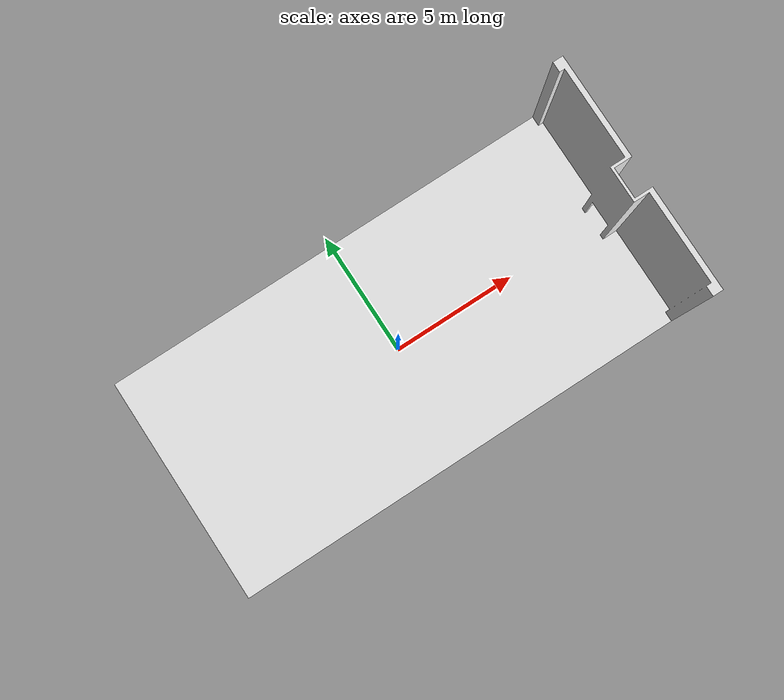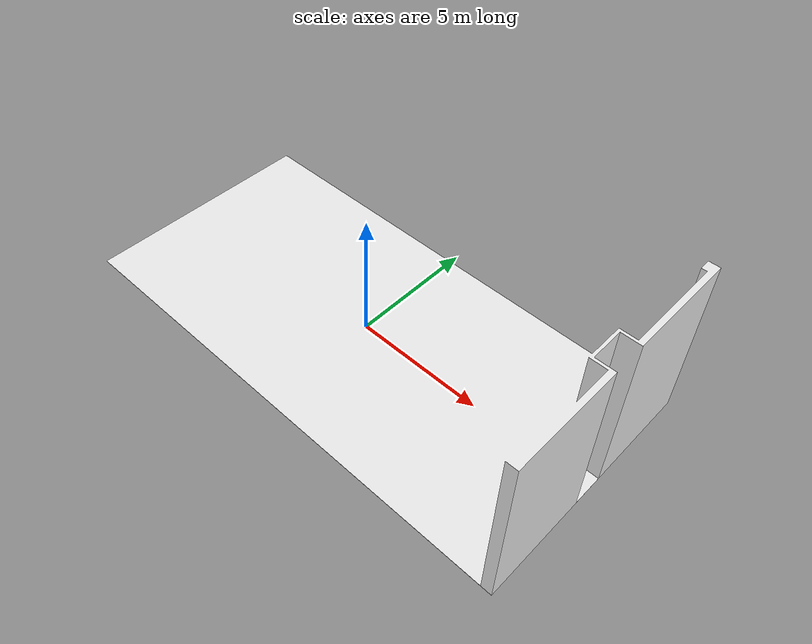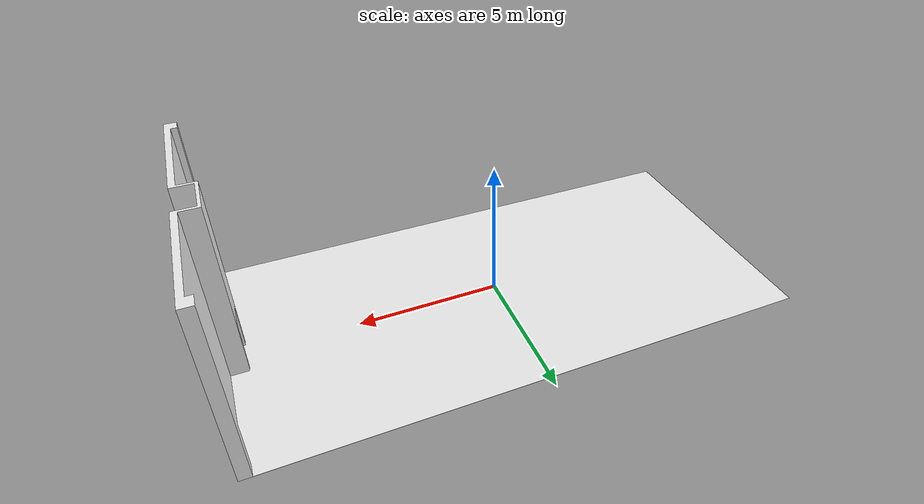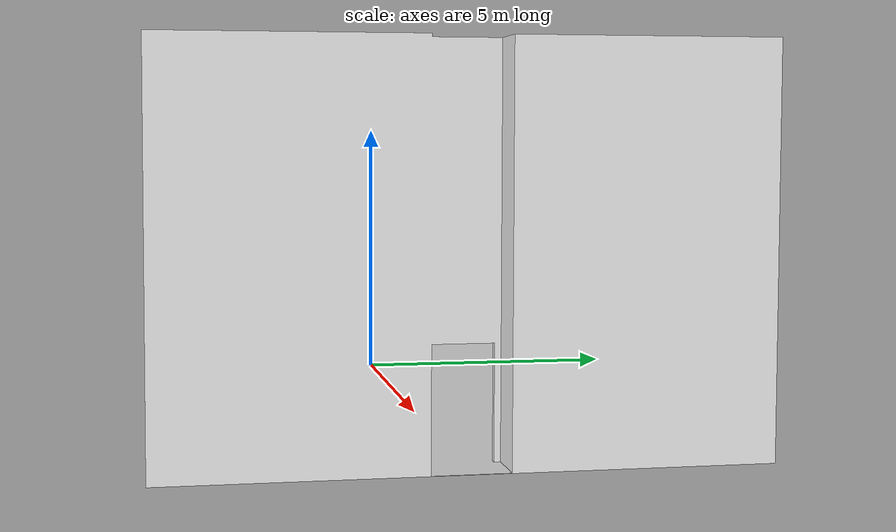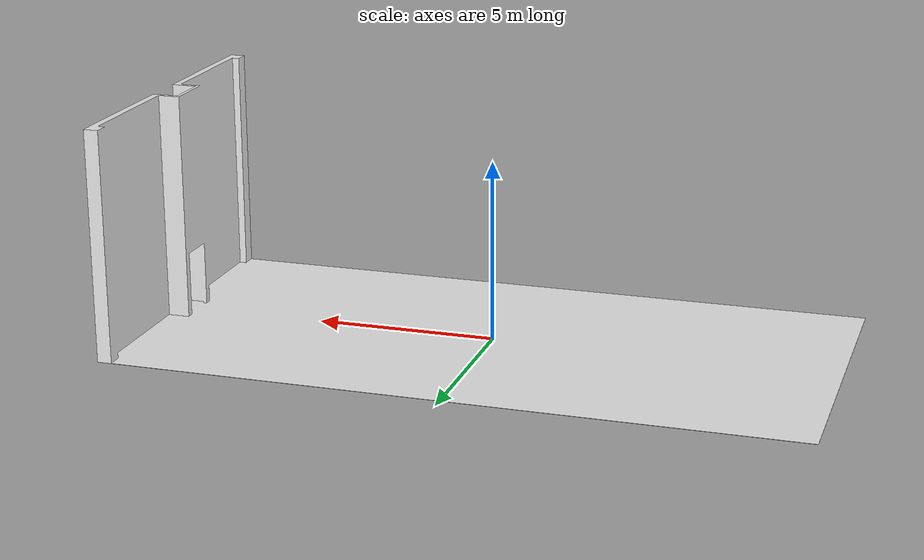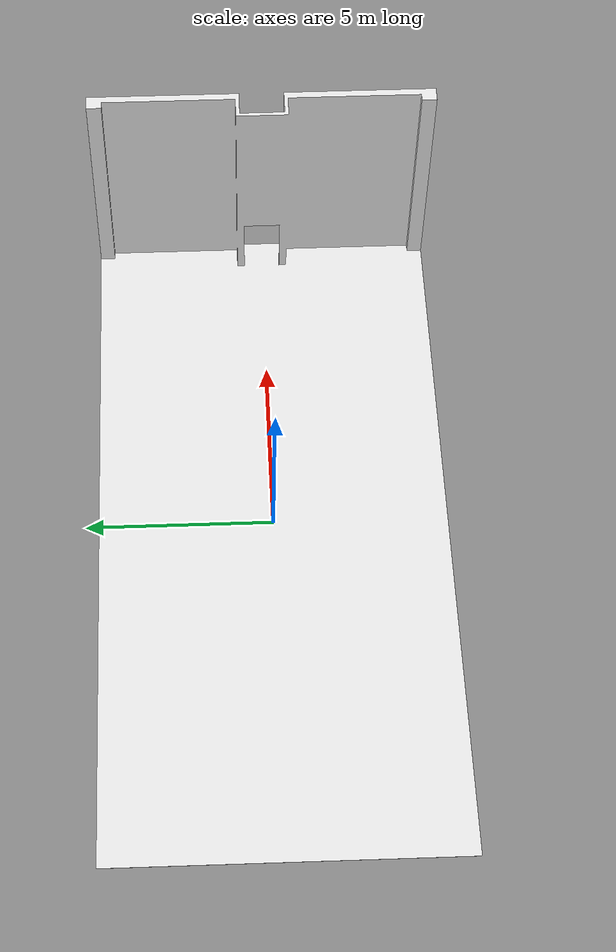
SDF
<?xml version="1.0" ?>
<sdf version="1.6">
  <model name="field">
    <static>true</static>
    <pose frame=''>0. 0. 0.002 1.57075 0. 0.</pose>
    <link name="link">
      <collision name="collision">
        <geometry>
          <mesh>
            <uri>model://floor/meshes/floor.stl</uri>
            <scale>.001 .001 .001</scale>
          </mesh>
        </geometry>
      </collision>
      <visual name="visual">
        <geometry>
          <mesh>
            <uri>model://floor/meshes/floor.stl</uri>
            <scale>.001 .001 .001</scale>
          </mesh>
        </geometry>
      <material>
          <script>
            <name>Gazebo/White</name>
            <uri>file://media/materials/scripts/gazebo.material</uri>
          </script>
        </material>
      </visual>
    </link>
  </model>
</sdf>
